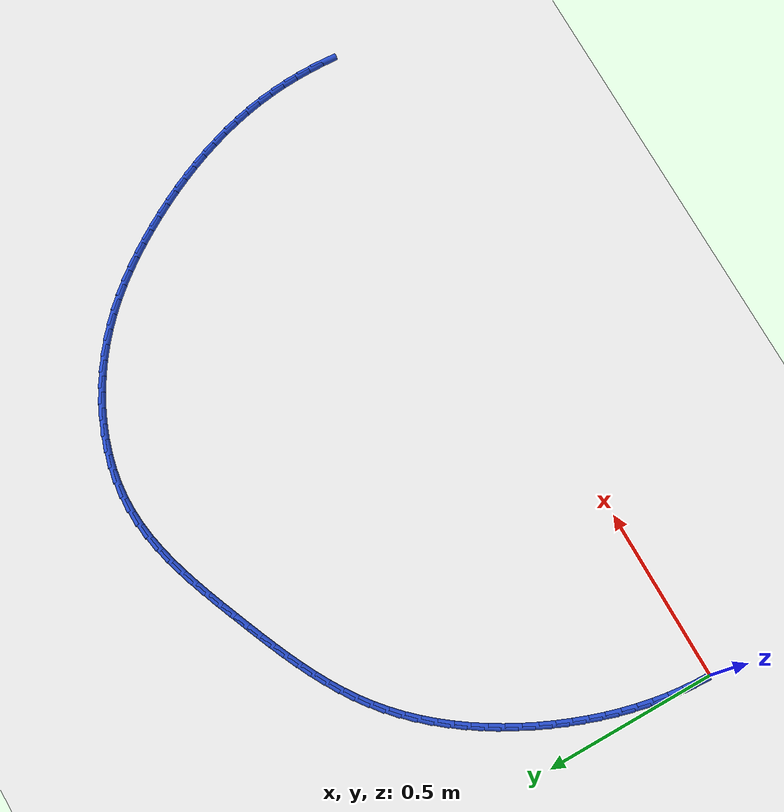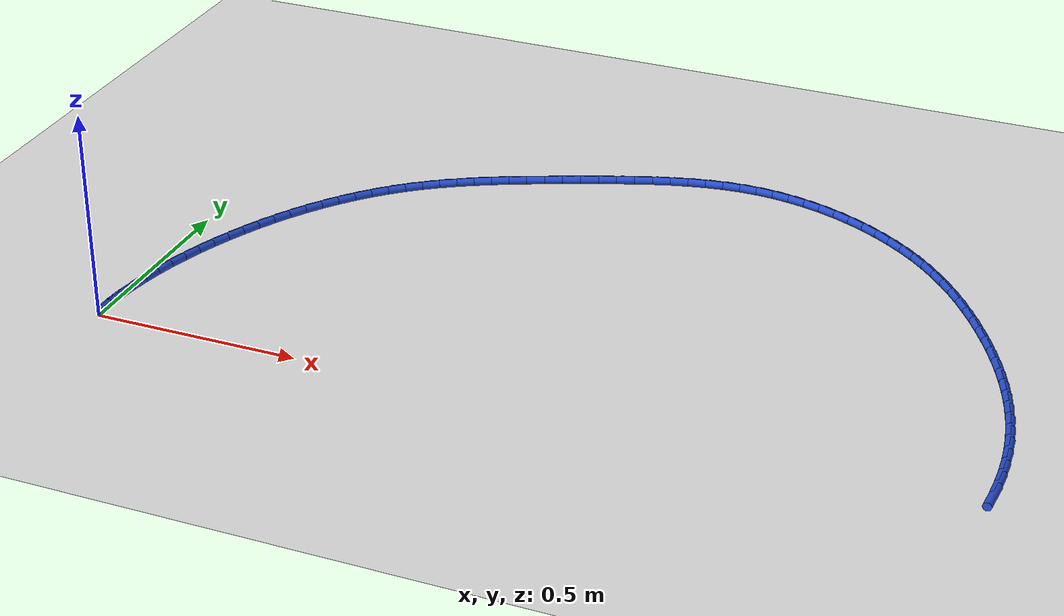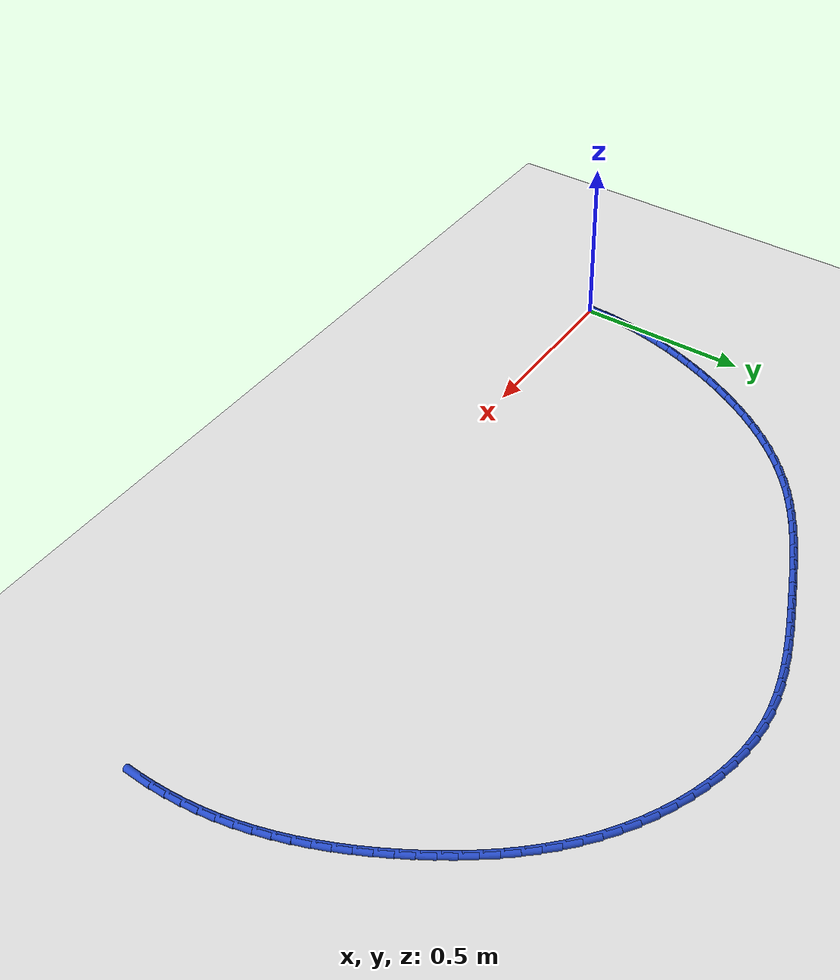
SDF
<sdf version="1.6">
 <world name="default">
  <model name="ground_plane">
   <static>1</static>
   <link name="link">
    <collision name="collision">
     <geometry><plane><normal>0 0 1</normal><size>100 100</size></plane></geometry>
     <surface><friction><ode><mu>100</mu><mu2>50</mu2></ode></friction></surface>
    </collision>
    <visual name="visual">
     <cast_shadows>0</cast_shadows>
     <geometry><plane><normal>0 0 1</normal><size>100 100</size></plane></geometry>
     <material>
      <script><uri>file://media/materials/scripts/gazebo.material</uri><name>Gazebo/WhiteGlow</name></script>
     </material>
    </visual>
   </link>
  </model>
  <model name="line">
   <link name="link_1">
    <pose>0.001398862178370712 0.04431588210363694 0.01 0 1.57 1.4932696431814405</pose>
    <collision name="collision">
     <geometry><cylinder><radius>0.01</radius><length>0.08</length></cylinder></geometry>
    </collision>
    <visual name="visual">
     <material>
      <script><name>Gazebo/Blue</name><uri>file://media/materials/scripts/gazebo.material</uri></script>
     </material>
     <geometry><cylinder><radius>0.01</radius><length>0.08</length></cylinder></geometry>
    </visual>
   </link>
   <link name="link_2">
    <pose>0.004828192716508468 0.08846142128943678 0.01 0 1.57 1.4487476840128644</pose>
    <collision name="collision">
     <geometry><cylinder><radius>0.01</radius><length>0.08</length></cylinder></geometry>
    </collision>
    <visual name="visual">
     <material>
      <script><name>Gazebo/Blue</name><uri>file://media/materials/scripts/gazebo.material</uri></script>
     </material>
     <geometry><cylinder><radius>0.01</radius><length>0.08</length></cylinder></geometry>
    </visual>
   </link>
   <link name="link_3">
    <pose>0.010218470899984242 0.13240691014067268 0.01 0 1.57 1.4057422438726748</pose>
    <collision name="collision">
     <geometry><cylinder><radius>0.01</radius><length>0.08</length></cylinder></geometry>
    </collision>
    <visual name="visual">
     <material>
      <script><name>Gazebo/Blue</name><uri>file://media/materials/scripts/gazebo.material</uri></script>
     </material>
     <geometry><cylinder><radius>0.01</radius><length>0.08</length></cylinder></geometry>
    </visual>
   </link>
   <link name="link_4">
    <pose>0.01750017601436904 0.17612264124061774 0.01 0 1.57 1.3642935634772129</pose>
    <collision name="collision">
     <geometry><cylinder><radius>0.01</radius><length>0.08</length></cylinder></geometry>
    </collision>
    <visual name="visual">
     <material>
      <script><name>Gazebo/Blue</name><uri>file://media/materials/scripts/gazebo.material</uri></script>
     </material>
     <geometry><cylinder><radius>0.01</radius><length>0.08</length></cylinder></geometry>
    </visual>
   </link>
   <link name="link_5">
    <pose>0.026603787345233842 0.21957890717254488 0.01 0 1.57 1.3244178832661933</pose>
    <collision name="collision">
     <geometry><cylinder><radius>0.01</radius><length>0.08</length></cylinder></geometry>
    </collision>
    <visual name="visual">
     <material>
      <script><name>Gazebo/Blue</name><uri>file://media/materials/scripts/gazebo.material</uri></script>
     </material>
     <geometry><cylinder><radius>0.01</radius><length>0.08</length></cylinder></geometry>
    </visual>
   </link>
   <link name="link_6">
    <pose>0.037459784178149644 0.2627460005197272 0.01 0 1.57 1.28611057775462</pose>
    <collision name="collision">
     <geometry><cylinder><radius>0.01</radius><length>0.08</length></cylinder></geometry>
    </collision>
    <visual name="visual">
     <material>
      <script><name>Gazebo/Blue</name><uri>file://media/materials/scripts/gazebo.material</uri></script>
     </material>
     <geometry><cylinder><radius>0.01</radius><length>0.08</length></cylinder></geometry>
    </visual>
   </link>
   <link name="link_7">
    <pose>0.049998645798687395 0.30559421386543756 0.01 0 1.57 1.2493493976437677</pose>
    <collision name="collision">
     <geometry><cylinder><radius>0.01</radius><length>0.08</length></cylinder></geometry>
    </collision>
    <visual name="visual">
     <material>
      <script><name>Gazebo/Blue</name><uri>file://media/materials/scripts/gazebo.material</uri></script>
     </material>
     <geometry><cylinder><radius>0.01</radius><length>0.08</length></cylinder></geometry>
    </visual>
   </link>
   <link name="link_8">
    <pose>0.06415085149241813 0.3480938397929491 0.01 0 1.57 1.2140976305341973</pose>
    <collision name="collision">
     <geometry><cylinder><radius>0.01</radius><length>0.08</length></cylinder></geometry>
    </collision>
    <visual name="visual">
     <material>
      <script><name>Gazebo/Blue</name><uri>file://media/materials/scripts/gazebo.material</uri></script>
     </material>
     <geometry><cylinder><radius>0.01</radius><length>0.08</length></cylinder></geometry>
    </visual>
   </link>
   <link name="link_9">
    <pose>0.07984688054491279 0.39021517088553487 0.01 0 1.57 1.1802191456416422</pose>
    <collision name="collision">
     <geometry><cylinder><radius>0.01</radius><length>0.08</length></cylinder></geometry>
    </collision>
    <visual name="visual">
     <material>
      <script><name>Gazebo/Blue</name><uri>file://media/materials/scripts/gazebo.material</uri></script>
     </material>
     <geometry><cylinder><radius>0.01</radius><length>0.08</length></cylinder></geometry>
    </visual>
   </link>
   <link name="link_10">
    <pose>0.09701985751825334 0.4319245098351208 0.01 0 1.57 1.1463386795100414</pose>
    <collision name="collision">
     <geometry><cylinder><radius>0.01</radius><length>0.08</length></cylinder></geometry>
    </collision>
    <visual name="visual">
     <material>
      <script><name>Gazebo/Blue</name><uri>file://media/materials/scripts/gazebo.material</uri></script>
     </material>
     <geometry><cylinder><radius>0.01</radius><length>0.08</length></cylinder></geometry>
    </visual>
   </link>
   <link name="link_11">
    <pose>0.11564169404886498 0.4731296564846304 0.01 0 1.57 1.1113007717614247</pose>
    <collision name="collision">
     <geometry><cylinder><radius>0.01</radius><length>0.08</length></cylinder></geometry>
    </collision>
    <visual name="visual">
     <material>
      <script><name>Gazebo/Blue</name><uri>file://media/materials/scripts/gazebo.material</uri></script>
     </material>
     <geometry><cylinder><radius>0.01</radius><length>0.08</length></cylinder></geometry>
    </visual>
   </link>
   <link name="link_12">
    <pose>0.1357137591400467 0.5136939798990691 0.01 0 1.57 1.0748833001247073</pose>
    <collision name="collision">
     <geometry><cylinder><radius>0.01</radius><length>0.08</length></cylinder></geometry>
    </collision>
    <visual name="visual">
     <material>
      <script><name>Gazebo/Blue</name><uri>file://media/materials/scripts/gazebo.material</uri></script>
     </material>
     <geometry><cylinder><radius>0.01</radius><length>0.08</length></cylinder></geometry>
    </visual>
   </link>
   <link name="link_13">
    <pose>0.15723815673653366 0.553479740625499 0.01 0 1.57 1.0368876005789145</pose>
    <collision name="collision">
     <geometry><cylinder><radius>0.01</radius><length>0.08</length></cylinder></geometry>
    </collision>
    <visual name="visual">
     <material>
      <script><name>Gazebo/Blue</name><uri>file://media/materials/scripts/gazebo.material</uri></script>
     </material>
     <geometry><cylinder><radius>0.01</radius><length>0.08</length></cylinder></geometry>
    </visual>
   </link>
   <link name="link_14">
    <pose>0.18021699078306103 0.5923491992109826 0.01 0 1.57 0.997114784701263</pose>
    <collision name="collision">
     <geometry><cylinder><radius>0.01</radius><length>0.08</length></cylinder></geometry>
    </collision>
    <visual name="visual">
     <material>
      <script><name>Gazebo/Blue</name><uri>file://media/materials/scripts/gazebo.material</uri></script>
     </material>
     <geometry><cylinder><radius>0.01</radius><length>0.08</length></cylinder></geometry>
    </visual>
   </link>
   <link name="link_15">
    <pose>0.204652365224364 0.6301646162025818 0.01 0 1.57 0.9553676352426698</pose>
    <collision name="collision">
     <geometry><cylinder><radius>0.01</radius><length>0.08</length></cylinder></geometry>
    </collision>
    <visual name="visual">
     <material>
      <script><name>Gazebo/Blue</name><uri>file://media/materials/scripts/gazebo.material</uri></script>
     </material>
     <geometry><cylinder><radius>0.01</radius><length>0.08</length></cylinder></geometry>
    </visual>
   </link>
   <link name="link_16">
    <pose>0.23054638400517774 0.6667882521473588 0.01 0 1.57 0.9114539082437486</pose>
    <collision name="collision">
     <geometry><cylinder><radius>0.01</radius><length>0.08</length></cylinder></geometry>
    </collision>
    <visual name="visual">
     <material>
      <script><name>Gazebo/Blue</name><uri>file://media/materials/scripts/gazebo.material</uri></script>
     </material>
     <geometry><cylinder><radius>0.01</radius><length>0.08</length></cylinder></geometry>
    </visual>
   </link>
   <link name="link_17">
    <pose>0.25790115107023753 0.7020823675923764 0.01 0 1.57 0.8651913218155416</pose>
    <collision name="collision">
     <geometry><cylinder><radius>0.01</radius><length>0.08</length></cylinder></geometry>
    </collision>
    <visual name="visual">
     <material>
      <script><name>Gazebo/Blue</name><uri>file://media/materials/scripts/gazebo.material</uri></script>
     </material>
     <geometry><cylinder><radius>0.01</radius><length>0.08</length></cylinder></geometry>
    </visual>
   </link>
   <link name="link_18">
    <pose>0.28671877036427856 0.7359092230846966 0.01 0 1.57 0.8164145035119497</pose>
    <collision name="collision">
     <geometry><cylinder><radius>0.01</radius><length>0.08</length></cylinder></geometry>
    </collision>
    <visual name="visual">
     <material>
      <script><name>Gazebo/Blue</name><uri>file://media/materials/scripts/gazebo.material</uri></script>
     </material>
     <geometry><cylinder><radius>0.01</radius><length>0.08</length></cylinder></geometry>
    </visual>
   </link>
   <link name="link_19">
    <pose>0.317001345832036 0.7681310791713813 0.01 0 1.57 0.7649840974503498</pose>
    <collision name="collision">
     <geometry><cylinder><radius>0.01</radius><length>0.08</length></cylinder></geometry>
    </collision>
    <visual name="visual">
     <material>
      <script><name>Gazebo/Blue</name><uri>file://media/materials/scripts/gazebo.material</uri></script>
     </material>
     <geometry><cylinder><radius>0.01</radius><length>0.08</length></cylinder></geometry>
    </visual>
   </link>
   <link name="link_20">
    <pose>0.3487509814182449 0.7986101963994929 0.01 0 1.57 0.710798066862894</pose>
    <collision name="collision">
     <geometry><cylinder><radius>0.01</radius><length>0.08</length></cylinder></geometry>
    </collision>
    <visual name="visual">
     <material>
      <script><name>Gazebo/Blue</name><uri>file://media/materials/scripts/gazebo.material</uri></script>
     </material>
     <geometry><cylinder><radius>0.01</radius><length>0.08</length></cylinder></geometry>
    </visual>
   </link>
   <link name="link_21">
    <pose>0.3819697810676408 0.827208835316094 0.01 0 1.57 0.6547103186259758</pose>
    <collision name="collision">
     <geometry><cylinder><radius>0.01</radius><length>0.08</length></cylinder></geometry>
    </collision>
    <visual name="visual">
     <material>
      <script><name>Gazebo/Blue</name><uri>file://media/materials/scripts/gazebo.material</uri></script>
     </material>
     <geometry><cylinder><radius>0.01</radius><length>0.08</length></cylinder></geometry>
    </visual>
   </link>
   <link name="link_22">
    <pose>0.41664439247683716 0.8538272732625697 0.01 0 1.57 0.6021983852947349</pose>
    <collision name="collision">
     <geometry><cylinder><radius>0.01</radius><length>0.08</length></cylinder></geometry>
    </collision>
    <visual name="visual">
     <material>
      <script><name>Gazebo/Blue</name><uri>file://media/materials/scripts/gazebo.material</uri></script>
     </material>
     <geometry><cylinder><radius>0.01</radius><length>0.08</length></cylinder></geometry>
    </visual>
   </link>
   <link name="link_23">
    <pose>0.452670189180328 0.8785902890907099 0.01 0 1.57 0.5555062727503012</pose>
    <collision name="collision">
     <geometry><cylinder><radius>0.01</radius><length>0.08</length></cylinder></geometry>
    </collision>
    <visual name="visual">
     <material>
      <script><name>Gazebo/Blue</name><uri>file://media/materials/scripts/gazebo.material</uri></script>
     </material>
     <geometry><cylinder><radius>0.01</radius><length>0.08</length></cylinder></geometry>
    </visual>
   </link>
   <link name="link_24">
    <pose>0.4899091587651343 0.9017047790386439 0.01 0 1.57 0.5147914372172068</pose>
    <collision name="collision">
     <geometry><cylinder><radius>0.01</radius><length>0.08</length></cylinder></geometry>
    </collision>
    <visual name="visual">
     <material>
      <script><name>Gazebo/Blue</name><uri>file://media/materials/scripts/gazebo.material</uri></script>
     </material>
     <geometry><cylinder><radius>0.01</radius><length>0.08</length></cylinder></geometry>
    </visual>
   </link>
   <link name="link_25">
    <pose>0.5282232391033058 0.9233777616253971 0.01 0 1.57 0.4800787779305284</pose>
    <collision name="collision">
     <geometry><cylinder><radius>0.01</radius><length>0.08</length></cylinder></geometry>
    </collision>
    <visual name="visual">
     <material>
      <script><name>Gazebo/Blue</name><uri>file://media/materials/scripts/gazebo.material</uri></script>
     </material>
     <geometry><cylinder><radius>0.01</radius><length>0.08</length></cylinder></geometry>
    </visual>
   </link>
   <link name="link_26">
    <pose>0.5674743680668917 0.9438162553699948 0.01 0 1.57 0.4513072331626924</pose>
    <collision name="collision">
     <geometry><cylinder><radius>0.01</radius><length>0.08</length></cylinder></geometry>
    </collision>
    <visual name="visual">
     <material>
      <script><name>Gazebo/Blue</name><uri>file://media/materials/scripts/gazebo.material</uri></script>
     </material>
     <geometry><cylinder><radius>0.01</radius><length>0.08</length></cylinder></geometry>
    </visual>
   </link>
   <link name="link_27">
    <pose>0.6075244835279412 0.9632272787914627 0.01 0 1.57 0.4283677527781234</pose>
    <collision name="collision">
     <geometry><cylinder><radius>0.01</radius><length>0.08</length></cylinder></geometry>
    </collision>
    <visual name="visual">
     <material>
      <script><name>Gazebo/Blue</name><uri>file://media/materials/scripts/gazebo.material</uri></script>
     </material>
     <geometry><cylinder><radius>0.01</radius><length>0.08</length></cylinder></geometry>
    </visual>
   </link>
   <link name="link_28">
    <pose>0.6482355233585038 0.9818178504088256 0.01 0 1.57 0.4111335537225085</pose>
    <collision name="collision">
     <geometry><cylinder><radius>0.01</radius><length>0.08</length></cylinder></geometry>
    </collision>
    <visual name="visual">
     <material>
      <script><name>Gazebo/Blue</name><uri>file://media/materials/scripts/gazebo.material</uri></script>
     </material>
     <geometry><cylinder><radius>0.01</radius><length>0.08</length></cylinder></geometry>
    </visual>
   </link>
   <link name="link_29">
    <pose>0.689469425430629 0.9997949887411095 0.01 0 1.57 0.39948251193025003</pose>
    <collision name="collision">
     <geometry><cylinder><radius>0.01</radius><length>0.08</length></cylinder></geometry>
    </collision>
    <visual name="visual">
     <material>
      <script><name>Gazebo/Blue</name><uri>file://media/materials/scripts/gazebo.material</uri></script>
     </material>
     <geometry><cylinder><radius>0.01</radius><length>0.08</length></cylinder></geometry>
    </visual>
   </link>
   <link name="link_30">
    <pose>0.731088127616366 1.0173657123073396 0.01 0 1.57 0.3932870985815125</pose>
    <collision name="collision">
     <geometry><cylinder><radius>0.01</radius><length>0.08</length></cylinder></geometry>
    </collision>
    <visual name="visual">
     <material>
      <script><name>Gazebo/Blue</name><uri>file://media/materials/scripts/gazebo.material</uri></script>
     </material>
     <geometry><cylinder><radius>0.01</radius><length>0.08</length></cylinder></geometry>
    </visual>
   </link>
   <link name="link_31">
    <pose>0.7729538633855513 1.0347359163906815 0.01 0 1.57 0.3886526555463868</pose>
    <collision name="collision">
     <geometry><cylinder><radius>0.01</radius><length>0.08</length></cylinder></geometry>
    </collision>
    <visual name="visual">
     <material>
      <script><name>Gazebo/Blue</name><uri>file://media/materials/scripts/gazebo.material</uri></script>
     </material>
     <geometry><cylinder><radius>0.01</radius><length>0.08</length></cylinder></geometry>
    </visual>
   </link>
   <link name="link_32">
    <pose>0.8149734389557599 1.051942125220628 0.01 0 1.57 0.37766717752340034</pose>
    <collision name="collision">
     <geometry><cylinder><radius>0.01</radius><length>0.08</length></cylinder></geometry>
    </collision>
    <visual name="visual">
     <material>
      <script><name>Gazebo/Blue</name><uri>file://media/materials/scripts/gazebo.material</uri></script>
     </material>
     <geometry><cylinder><radius>0.01</radius><length>0.08</length></cylinder></geometry>
    </visual>
   </link>
   <link name="link_33">
    <pose>0.8571454213301235 1.0686721831331472 0.01 0 1.57 0.3592560662570996</pose>
    <collision name="collision">
     <geometry><cylinder><radius>0.01</radius><length>0.08</length></cylinder></geometry>
    </collision>
    <visual name="visual">
     <material>
      <script><name>Gazebo/Blue</name><uri>file://media/materials/scripts/gazebo.material</uri></script>
     </material>
     <geometry><cylinder><radius>0.01</radius><length>0.08</length></cylinder></geometry>
    </visual>
   </link>
   <link name="link_34">
    <pose>0.8994796832107826 1.0845709741745557 0.01 0 1.57 0.3332159286313968</pose>
    <collision name="collision">
     <geometry><cylinder><radius>0.01</radius><length>0.08</length></cylinder></geometry>
    </collision>
    <visual name="visual">
     <material>
      <script><name>Gazebo/Blue</name><uri>file://media/materials/scripts/gazebo.material</uri></script>
     </material>
     <geometry><cylinder><radius>0.01</radius><length>0.08</length></cylinder></geometry>
    </visual>
   </link>
   <link name="link_35">
    <pose>0.9419860972998773 1.0992833823911694 0.01 0 1.57 0.29926924251223297</pose>
    <collision name="collision">
     <geometry><cylinder><radius>0.01</radius><length>0.08</length></cylinder></geometry>
    </collision>
    <visual name="visual">
     <material>
      <script><name>Gazebo/Blue</name><uri>file://media/materials/scripts/gazebo.material</uri></script>
     </material>
     <geometry><cylinder><radius>0.01</radius><length>0.08</length></cylinder></geometry>
    </visual>
   </link>
   <link name="link_36">
    <pose>0.9846745362995472 1.1124542918293043 0.01 0 1.57 0.2571055033875677</pose>
    <collision name="collision">
     <geometry><cylinder><radius>0.01</radius><length>0.08</length></cylinder></geometry>
    </collision>
    <visual name="visual">
     <material>
      <script><name>Gazebo/Blue</name><uri>file://media/materials/scripts/gazebo.material</uri></script>
     </material>
     <geometry><cylinder><radius>0.01</radius><length>0.08</length></cylinder></geometry>
    </visual>
   </link>
   <link name="link_37">
    <pose>1.0275548729119326 1.1237285865352769 0.01 0 1.57 0.20644350228924846</pose>
    <collision name="collision">
     <geometry><cylinder><radius>0.01</radius><length>0.08</length></cylinder></geometry>
    </collision>
    <visual name="visual">
     <material>
      <script><name>Gazebo/Blue</name><uri>file://media/materials/scripts/gazebo.material</uri></script>
     </material>
     <geometry><cylinder><radius>0.01</radius><length>0.08</length></cylinder></geometry>
    </visual>
   </link>
   <link name="link_38">
    <pose>1.0706369798391733 1.1327511505554029 0.01 0 1.57 0.14711968281365162</pose>
    <collision name="collision">
     <geometry><cylinder><radius>0.01</radius><length>0.08</length></cylinder></geometry>
    </collision>
    <visual name="visual">
     <material>
      <script><name>Gazebo/Blue</name><uri>file://media/materials/scripts/gazebo.material</uri></script>
     </material>
     <geometry><cylinder><radius>0.01</radius><length>0.08</length></cylinder></geometry>
    </visual>
   </link>
   <link name="link_39">
    <pose>1.1139307297834096 1.1391668679359988 0.01 0 1.57 0.07920277676388549</pose>
    <collision name="collision">
     <geometry><cylinder><radius>0.01</radius><length>0.08</length></cylinder></geometry>
    </collision>
    <visual name="visual">
     <material>
      <script><name>Gazebo/Blue</name><uri>file://media/materials/scripts/gazebo.material</uri></script>
     </material>
     <geometry><cylinder><radius>0.01</radius><length>0.08</length></cylinder></geometry>
    </visual>
   </link>
   <link name="link_40">
    <pose>1.157445995446781 1.1426206227233802 0.01 0 1.57 0.0032378913855431696</pose>
    <collision name="collision">
     <geometry><cylinder><radius>0.01</radius><length>0.08</length></cylinder></geometry>
    </collision>
    <visual name="visual">
     <material>
      <script><name>Gazebo/Blue</name><uri>file://media/materials/scripts/gazebo.material</uri></script>
     </material>
     <geometry><cylinder><radius>0.01</radius><length>0.08</length></cylinder></geometry>
    </visual>
   </link>
   <link name="link_41">
    <pose>1.2011907453894992 1.142762263967369 0.01 0 1.57 -0.07519388185587397</pose>
    <collision name="collision">
     <geometry><cylinder><radius>0.01</radius><length>0.08</length></cylinder></geometry>
    </collision>
    <visual name="visual">
     <material>
      <script><name>Gazebo/Blue</name><uri>file://media/materials/scripts/gazebo.material</uri></script>
     </material>
     <geometry><cylinder><radius>0.01</radius><length>0.08</length></cylinder></geometry>
    </visual>
   </link>
   <link name="link_42">
    <pose>1.2450911266674778 1.1394549882889167 0.01 0 1.57 -0.1493983646815262</pose>
    <collision name="collision">
     <geometry><cylinder><radius>0.01</radius><length>0.08</length></cylinder></geometry>
    </collision>
    <visual name="visual">
     <material>
      <script><name>Gazebo/Blue</name><uri>file://media/materials/scripts/gazebo.material</uri></script>
     </material>
     <geometry><cylinder><radius>0.01</radius><length>0.08</length></cylinder></geometry>
    </visual>
   </link>
   <link name="link_43">
    <pose>1.2889622522303597 1.1328515110252275 0.01 0 1.57 -0.21924797441721217</pose>
    <collision name="collision">
     <geometry><cylinder><radius>0.01</radius><length>0.08</length></cylinder></geometry>
    </collision>
    <visual name="visual">
     <material>
      <script><name>Gazebo/Blue</name><uri>file://media/materials/scripts/gazebo.material</uri></script>
     </material>
     <geometry><cylinder><radius>0.01</radius><length>0.08</length></cylinder></geometry>
    </visual>
   </link>
   <link name="link_44">
    <pose>1.3326113171237173 1.1231251932546988 0.01 0 1.57 -0.2851966350148642</pose>
    <collision name="collision">
     <geometry><cylinder><radius>0.01</radius><length>0.08</length></cylinder></geometry>
    </collision>
    <visual name="visual">
     <material>
      <script><name>Gazebo/Blue</name><uri>file://media/materials/scripts/gazebo.material</uri></script>
     </material>
     <geometry><cylinder><radius>0.01</radius><length>0.08</length></cylinder></geometry>
    </visual>
   </link>
   <link name="link_45">
    <pose>1.3758455163931238 1.1104493960557278 0.01 0 1.57 -0.34776281803627923</pose>
    <collision name="collision">
     <geometry><cylinder><radius>0.01</radius><length>0.08</length></cylinder></geometry>
    </collision>
    <visual name="visual">
     <material>
      <script><name>Gazebo/Blue</name><uri>file://media/materials/scripts/gazebo.material</uri></script>
     </material>
     <geometry><cylinder><radius>0.01</radius><length>0.08</length></cylinder></geometry>
    </visual>
   </link>
   <link name="link_46">
    <pose>1.4184720450841513 1.0949974805067113 0.01 0 1.57 -0.4074989562832908</pose>
    <collision name="collision">
     <geometry><cylinder><radius>0.01</radius><length>0.08</length></cylinder></geometry>
    </collision>
    <visual name="visual">
     <material>
      <script><name>Gazebo/Blue</name><uri>file://media/materials/scripts/gazebo.material</uri></script>
     </material>
     <geometry><cylinder><radius>0.01</radius><length>0.08</length></cylinder></geometry>
    </visual>
   </link>
   <link name="link_47">
    <pose>1.4602980982423721 1.0769428076860466 0.01 0 1.57 -0.46497277580109314</pose>
    <collision name="collision">
     <geometry><cylinder><radius>0.01</radius><length>0.08</length></cylinder></geometry>
    </collision>
    <visual name="visual">
     <material>
      <script><name>Gazebo/Blue</name><uri>file://media/materials/scripts/gazebo.material</uri></script>
     </material>
     <geometry><cylinder><radius>0.01</radius><length>0.08</length></cylinder></geometry>
    </visual>
   </link>
   <link name="link_48">
    <pose>1.5011308709133595 1.0564587386721311 0.01 0 1.57 -0.5207580547044445</pose>
    <collision name="collision">
     <geometry><cylinder><radius>0.01</radius><length>0.08</length></cylinder></geometry>
    </collision>
    <visual name="visual">
     <material>
      <script><name>Gazebo/Blue</name><uri>file://media/materials/scripts/gazebo.material</uri></script>
     </material>
     <geometry><cylinder><radius>0.01</radius><length>0.08</length></cylinder></geometry>
    </visual>
   </link>
   <link name="link_49">
    <pose>1.5407775581426861 1.0337186345433618 0.01 0 1.57 -0.575432439204022</pose>
    <collision name="collision">
     <geometry><cylinder><radius>0.01</radius><length>0.08</length></cylinder></geometry>
    </collision>
    <visual name="visual">
     <material>
      <script><name>Gazebo/Blue</name><uri>file://media/materials/scripts/gazebo.material</uri></script>
     </material>
     <geometry><cylinder><radius>0.01</radius><length>0.08</length></cylinder></geometry>
    </visual>
   </link>
   <link name="link_50">
    <pose>1.579045354975925 1.0088958563781354 0.01 0 1.57 -0.6295803828350084</pose>
    <collision name="collision">
     <geometry><cylinder><radius>0.01</radius><length>0.08</length></cylinder></geometry>
    </collision>
    <visual name="visual">
     <material>
      <script><name>Gazebo/Blue</name><uri>file://media/materials/scripts/gazebo.material</uri></script>
     </material>
     <geometry><cylinder><radius>0.01</radius><length>0.08</length></cylinder></geometry>
    </visual>
   </link>
   <link name="link_51">
    <pose>1.6157414564586476 0.9821637652548495 0.01 0 1.57 -0.6837782524924692</pose>
    <collision name="collision">
     <geometry><cylinder><radius>0.01</radius><length>0.08</length></cylinder></geometry>
    </collision>
    <visual name="visual">
     <material>
      <script><name>Gazebo/Blue</name><uri>file://media/materials/scripts/gazebo.material</uri></script>
     </material>
     <geometry><cylinder><radius>0.01</radius><length>0.08</length></cylinder></geometry>
    </visual>
   </link>
   <link name="link_52">
    <pose>1.6506750688113678 0.9536953328349882 0.01 0 1.57 -0.7372651429133686</pose>
    <collision name="collision">
     <geometry><cylinder><radius>0.01</radius><length>0.08</length></cylinder></geometry>
    </collision>
    <visual name="visual">
     <material>
      <script><name>Gazebo/Blue</name><uri>file://media/materials/scripts/gazebo.material</uri></script>
     </material>
     <geometry><cylinder><radius>0.01</radius><length>0.08</length></cylinder></geometry>
    </visual>
   </link>
   <link name="link_53">
    <pose>1.6837712802246347 0.9236410929512027 0.01 0 1.57 -0.7879894782428652</pose>
    <collision name="collision">
     <geometry><cylinder><radius>0.01</radius><length>0.08</length></cylinder></geometry>
    </collision>
    <visual name="visual">
     <material>
      <script><name>Gazebo/Blue</name><uri>file://media/materials/scripts/gazebo.material</uri></script>
     </material>
     <geometry><cylinder><radius>0.01</radius><length>0.08</length></cylinder></geometry>
    </visual>
   </link>
   <link name="link_54">
    <pose>1.7151320953452267 0.8921173237088621 0.01 0 1.57 -0.835459527815596</pose>
    <collision name="collision">
     <geometry><cylinder><radius>0.01</radius><length>0.08</length></cylinder></geometry>
    </collision>
    <visual name="visual">
     <material>
      <script><name>Gazebo/Blue</name><uri>file://media/materials/scripts/gazebo.material</uri></script>
     </material>
     <geometry><cylinder><radius>0.01</radius><length>0.08</length></cylinder></geometry>
    </visual>
   </link>
   <link name="link_55">
    <pose>1.7448744261204676 0.8592374167638056 0.01 0 1.57 -0.8794364145640197</pose>
    <collision name="collision">
     <geometry><cylinder><radius>0.01</radius><length>0.08</length></cylinder></geometry>
    </collision>
    <visual name="visual">
     <material>
      <script><name>Gazebo/Blue</name><uri>file://media/materials/scripts/gazebo.material</uri></script>
     </material>
     <geometry><cylinder><radius>0.01</radius><length>0.08</length></cylinder></geometry>
    </visual>
   </link>
   <link name="link_56">
    <pose>1.773115184497683 0.825114763771871 0.01 0 1.57 -0.9197658123125304</pose>
    <collision name="collision">
     <geometry><cylinder><radius>0.01</radius><length>0.08</length></cylinder></geometry>
    </collision>
    <visual name="visual">
     <material>
      <script><name>Gazebo/Blue</name><uri>file://media/materials/scripts/gazebo.material</uri></script>
     </material>
     <geometry><cylinder><radius>0.01</radius><length>0.08</length></cylinder></geometry>
    </visual>
   </link>
   <link name="link_57">
    <pose>1.7999712824241971 0.7898627563888967 0.01 0 1.57 -0.956364749484892</pose>
    <collision name="collision">
     <geometry><cylinder><radius>0.01</radius><length>0.08</length></cylinder></geometry>
    </collision>
    <visual name="visual">
     <material>
      <script><name>Gazebo/Blue</name><uri>file://media/materials/scripts/gazebo.material</uri></script>
     </material>
     <geometry><cylinder><radius>0.01</radius><length>0.08</length></cylinder></geometry>
    </visual>
   </link>
   <link name="link_58">
    <pose>1.8255596318473364 0.7535947862707214 0.01 0 1.57 -0.9892065368995056</pose>
    <collision name="collision">
     <geometry><cylinder><radius>0.01</radius><length>0.08</length></cylinder></geometry>
    </collision>
    <visual name="visual">
     <material>
      <script><name>Gazebo/Blue</name><uri>file://media/materials/scripts/gazebo.material</uri></script>
     </material>
     <geometry><cylinder><radius>0.01</radius><length>0.08</length></cylinder></geometry>
    </visual>
   </link>
   <link name="link_59">
    <pose>1.8499971447144254 0.7164242450731838 0.01 0 1.57 -1.0183910396995377</pose>
    <collision name="collision">
     <geometry><cylinder><radius>0.01</radius><length>0.08</length></cylinder></geometry>
    </collision>
    <visual name="visual">
     <material>
      <script><name>Gazebo/Blue</name><uri>file://media/materials/scripts/gazebo.material</uri></script>
     </material>
     <geometry><cylinder><radius>0.01</radius><length>0.08</length></cylinder></geometry>
    </visual>
   </link>
   <link name="link_60">
    <pose>1.8733970620508875 0.6784632202649494 0.01 0 1.57 -1.0462432376355992</pose>
    <collision name="collision">
     <geometry><cylinder><radius>0.01</radius><length>0.08</length></cylinder></geometry>
    </collision>
    <visual name="visual">
     <material>
      <script><name>Gazebo/Blue</name><uri>file://media/materials/scripts/gazebo.material</uri></script>
     </material>
     <geometry><cylinder><radius>0.01</radius><length>0.08</length></cylinder></geometry>
    </visual>
   </link>
   <link name="link_61">
    <pose>1.8957748370472771 0.6397890577311512 0.01 0 1.57 -1.07531748959148</pose>
    <collision name="collision">
     <geometry><cylinder><radius>0.01</radius><length>0.08</length></cylinder></geometry>
    </collision>
    <visual name="visual">
     <material>
      <script><name>Gazebo/Blue</name><uri>file://media/materials/scripts/gazebo.material</uri></script>
     </material>
     <geometry><cylinder><radius>0.01</radius><length>0.08</length></cylinder></geometry>
    </visual>
   </link>
   <link name="link_62">
    <pose>1.9170400833582022 0.600441501204424 0.01 0 1.57 -1.1058389275875127</pose>
    <collision name="collision">
     <geometry><cylinder><radius>0.01</radius><length>0.08</length></cylinder></geometry>
    </collision>
    <visual name="visual">
     <material>
      <script><name>Gazebo/Blue</name><uri>file://media/materials/scripts/gazebo.material</uri></script>
     </material>
     <geometry><cylinder><radius>0.01</radius><length>0.08</length></cylinder></geometry>
    </visual>
   </link>
   <link name="link_63">
    <pose>1.9370971302150808 0.5604584169933874 0.01 0 1.57 -1.1379091922488629</pose>
    <collision name="collision">
     <geometry><cylinder><radius>0.01</radius><length>0.08</length></cylinder></geometry>
    </collision>
    <visual name="visual">
     <material>
      <script><name>Gazebo/Blue</name><uri>file://media/materials/scripts/gazebo.material</uri></script>
     </material>
     <geometry><cylinder><radius>0.01</radius><length>0.08</length></cylinder></geometry>
    </visual>
   </link>
   <link name="link_64">
    <pose>1.9558503068493327 0.5198776714066606 0.01 0 1.57 -1.171627762367167</pose>
    <collision name="collision">
     <geometry><cylinder><radius>0.01</radius><length>0.08</length></cylinder></geometry>
    </collision>
    <visual name="visual">
     <material>
      <script><name>Gazebo/Blue</name><uri>file://media/materials/scripts/gazebo.material</uri></script>
     </material>
     <geometry><cylinder><radius>0.01</radius><length>0.08</length></cylinder></geometry>
    </visual>
   </link>
   <link name="link_65">
    <pose>1.973203942492377 0.47873713075286284 0.01 0 1.57 -1.2070897394157256</pose>
    <collision name="collision">
     <geometry><cylinder><radius>0.01</radius><length>0.08</length></cylinder></geometry>
    </collision>
    <visual name="visual">
     <material>
      <script><name>Gazebo/Blue</name><uri>file://media/materials/scripts/gazebo.material</uri></script>
     </material>
     <geometry><cylinder><radius>0.01</radius><length>0.08</length></cylinder></geometry>
    </visual>
   </link>
   <link name="link_66">
    <pose>1.9890623663756317 0.4370746613406134 0.01 0 1.57 -1.2443829851224995</pose>
    <collision name="collision">
     <geometry><cylinder><radius>0.01</radius><length>0.08</length></cylinder></geometry>
    </collision>
    <visual name="visual">
     <material>
      <script><name>Gazebo/Blue</name><uri>file://media/materials/scripts/gazebo.material</uri></script>
     </material>
     <geometry><cylinder><radius>0.01</radius><length>0.08</length></cylinder></geometry>
    </visual>
   </link>
   <link name="link_67">
    <pose>2.0033299077305164 0.3949281294785313 0.01 0 1.57 -1.2835845569482978</pose>
    <collision name="collision">
     <geometry><cylinder><radius>0.01</radius><length>0.08</length></cylinder></geometry>
    </collision>
    <visual name="visual">
     <material>
      <script><name>Gazebo/Blue</name><uri>file://media/materials/scripts/gazebo.material</uri></script>
     </material>
     <geometry><cylinder><radius>0.01</radius><length>0.08</length></cylinder></geometry>
    </visual>
   </link>
   <link name="link_68">
    <pose>2.0159108957884495 0.35233540147523634 0.01 0 1.57 -1.3247564225186355</pose>
    <collision name="collision">
     <geometry><cylinder><radius>0.01</radius><length>0.08</length></cylinder></geometry>
    </collision>
    <visual name="visual">
     <material>
      <script><name>Gazebo/Blue</name><uri>file://media/materials/scripts/gazebo.material</uri></script>
     </material>
     <geometry><cylinder><radius>0.01</radius><length>0.08</length></cylinder></geometry>
    </visual>
   </link>
   <link name="link_69">
    <pose>2.02670965978085 0.30933434363934764 0.01 0 1.57 -1.3679404936648845</pose>
    <collision name="collision">
     <geometry><cylinder><radius>0.01</radius><length>0.08</length></cylinder></geometry>
    </collision>
    <visual name="visual">
     <material>
      <script><name>Gazebo/Blue</name><uri>file://media/materials/scripts/gazebo.material</uri></script>
     </material>
     <geometry><cylinder><radius>0.01</radius><length>0.08</length></cylinder></geometry>
    </visual>
   </link>
   <link name="link_70">
    <pose>2.035630528939137 0.2659628222794845 0.01 0 1.57 -1.4130899864215327</pose>
    <collision name="collision">
     <geometry><cylinder><radius>0.01</radius><length>0.08</length></cylinder></geometry>
    </collision>
    <visual name="visual">
     <material>
      <script><name>Gazebo/Blue</name><uri>file://media/materials/scripts/gazebo.material</uri></script>
     </material>
     <geometry><cylinder><radius>0.01</radius><length>0.08</length></cylinder></geometry>
    </visual>
   </link>
   <link name="link_71">
    <pose>2.0425806023199025 0.22225907198138198 0.01 0 1.57 -1.458346068065153</pose>
    <collision name="collision">
     <geometry><cylinder><radius>0.01</radius><length>0.08</length></cylinder></geometry>
    </collision>
    <visual name="visual">
     <material>
      <script><name>Gazebo/Blue</name><uri>file://media/materials/scripts/gazebo.material</uri></script>
     </material>
     <geometry><cylinder><radius>0.01</radius><length>0.08</length></cylinder></geometry>
    </visual>
   </link>
   <link name="link_72">
    <pose>2.04754790508128 0.1782720872991668 0.01 0 1.57 -1.5015910224160887</pose>
    <collision name="collision">
     <geometry><cylinder><radius>0.01</radius><length>0.08</length></cylinder></geometry>
    </collision>
    <visual name="visual">
     <material>
      <script><name>Gazebo/Blue</name><uri>file://media/materials/scripts/gazebo.material</uri></script>
     </material>
     <geometry><cylinder><radius>0.01</radius><length>0.08</length></cylinder></geometry>
    </visual>
   </link>
   <link name="link_73">
    <pose>2.0506122970964804 0.13406307316918398 0.01 0 1.57 -1.542714310483269</pose>
    <collision name="collision">
     <geometry><cylinder><radius>0.01</radius><length>0.08</length></cylinder></geometry>
    </collision>
    <visual name="visual">
     <material>
      <script><name>Gazebo/Blue</name><uri>file://media/materials/scripts/gazebo.material</uri></script>
     </material>
     <geometry><cylinder><radius>0.01</radius><length>0.08</length></cylinder></geometry>
    </visual>
   </link>
   <link name="link_74">
    <pose>2.0518586007287807 0.0896938943425383 0.01 0 1.57 1.5598457863994017</pose>
    <collision name="collision">
     <geometry><cylinder><radius>0.01</radius><length>0.08</length></cylinder></geometry>
    </collision>
    <visual name="visual">
     <material>
      <script><name>Gazebo/Blue</name><uri>file://media/materials/scripts/gazebo.material</uri></script>
     </material>
     <geometry><cylinder><radius>0.01</radius><length>0.08</length></cylinder></geometry>
    </visual>
   </link>
   <link name="link_75">
    <pose>2.051371638341454 0.045226415570334785 0.01 0 1.57 1.5228506671445563</pose>
    <collision name="collision">
     <geometry><cylinder><radius>0.01</radius><length>0.08</length></cylinder></geometry>
    </collision>
    <visual name="visual">
     <material>
      <script><name>Gazebo/Blue</name><uri>file://media/materials/scripts/gazebo.material</uri></script>
     </material>
     <geometry><cylinder><radius>0.01</radius><length>0.08</length></cylinder></geometry>
    </visual>
   </link>
   <link name="link_151">
    <pose>0.0014138680569888793 0.04430091270050669 0.01 0 1.57 1.5388920561806223</pose>
    <collision name="collision">
     <geometry><cylinder><radius>0.01</radius><length>0.08</length></cylinder></geometry>
    </collision>
    <visual name="visual">
     <material>
      <script><name>Gazebo/Blue</name><uri>file://media/materials/scripts/gazebo.material</uri></script>
     </material>
     <geometry><cylinder><radius>0.01</radius><length>0.08</length></cylinder></geometry>
    </visual>
   </link>
  </model>
 </world>
</sdf>
